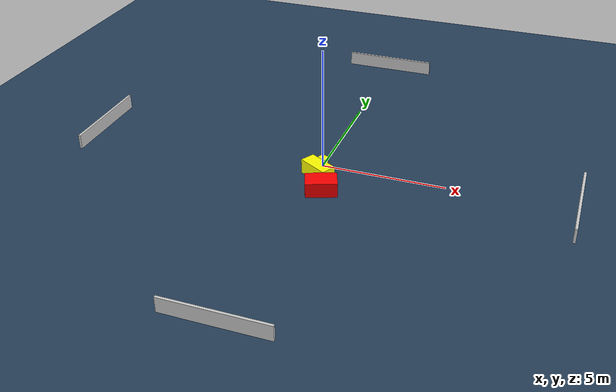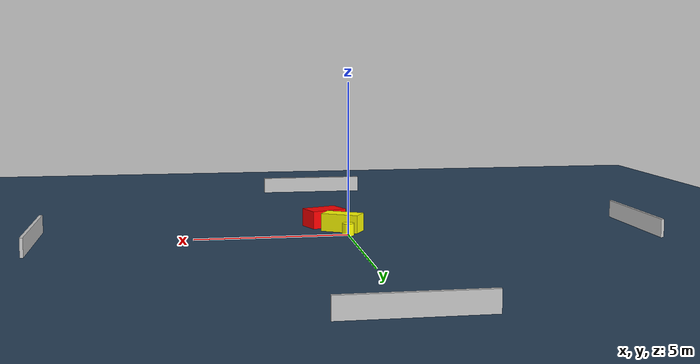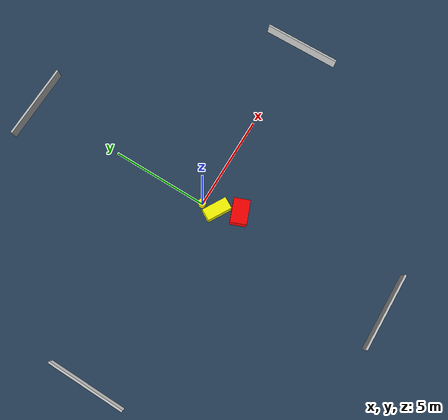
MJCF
<?xml version="1.0" ?>
<mujoco model="generated_environment">
  <option timestep="0.01" integrator="RK4" cone="elliptic"/>
  <default>
    <geom density="1"/>
  </default>
  <asset>
    <texture builtin="gradient" height="3072" name="skybox" rgb1="0.3 0.5 0.7" rgb2="0 0 0" type="skybox" width="512"/>
    <texture builtin="checker" height="300" name="groundplane" rgb1="0.2 0.3 0.4" rgb2="0.1 0.2 0.3" type="2d" width="300"/>
    <material name="groundplane" reflectance="0.2" texrepeat="5 5" texture="groundplane"/>
  </asset>
  <worldbody>
    <light dir="0 0 -1" directional="true" pos="0 0 1.5"/>
    <geom condim="3" friction="0.5 0.005 0.001" material="groundplane" name="floor" pos="0 0 0" size="0 0 0.05" type="plane"/>
    <body name="walls">
      <geom name="wall_1" condim="4" pos="-10.0 0.0 0.3" rgba="0.800000011920929 0.800000011920929 0.800000011920929 1.0" size="0.05 2.0 0.3" type="box"/>
      <geom name="wall_2" condim="4" pos="10.0 0.0 0.3" rgba="0.800000011920929 0.800000011920929 0.800000011920929 1.0" size="0.05 2.0 0.3" type="box"/>
      <geom name="wall_3" condim="4" pos="0.0 -10.0 0.3" rgba="0.800000011920929 0.800000011920929 0.800000011920929 1.0" size="2.0 0.05 0.3" type="box"/>
      <geom name="wall_4" condim="4" pos="0.0 10.0 0.3" rgba="0.800000011920929 0.800000011920929 0.800000011920929 1.0" size="2.0 0.05 0.3" type="box"/>
    </body>
    <body name="robot">
      <joint name="joint_x" type="slide" pos="0 0 0" axis="1 0 0"/>
      <joint name="joint_y" type="slide" pos="0 0 0" axis="0 1 0"/>
      <geom name="robot" type="cylinder" pos="0.0 0.0 0.2" size="0.2 0.2 0.0" mass="5.0" friction="1.0 0.005 0.0001" condim="4" rgba="1.0 1.0 0.0 1.0"/>
    </body>
    <body name="obstacle_1_movable">
      <geom name="obstacle_1_movable" condim="4" pos="0.06544175591337534 -0.7937995893415734 0.3" euler="0 0 150.25383883882353" friction="0.0 0.005 0.001" rgba="1.0 1.0 0.0 1.0" size="0.6441767451687718 0.30741410771224376 0.3" type="box" mass="0.1"/>
      <joint type="free"/>
    </body>
    <body name="obstacle_2_static">
      <geom name="obstacle_2_static" condim="4" pos="0.5566482077625595 -1.8151793849831732 0.3" euler="0 0 111.19511552688886" friction="0.0 0.005 0.001" rgba="1.0 0.0 0.0 1.0" size="0.41104091594147324 0.6195199485132824 0.3" type="box"/>
    </body>
  </worldbody>
  <actuator>
    <motor name="actuator_x" joint="joint_x" gear="1" ctrlrange="-1 1"/>
    <motor name="actuator_y" joint="joint_y" gear="1" ctrlrange="-1 1"/>
  </actuator>
</mujoco>
